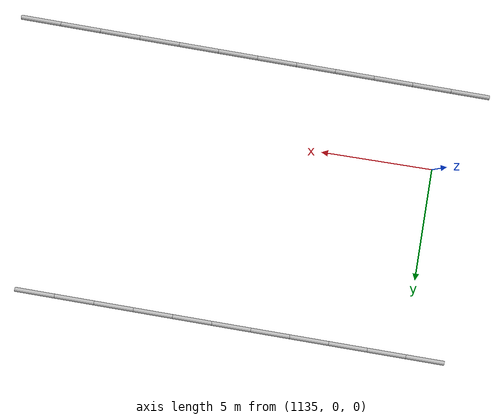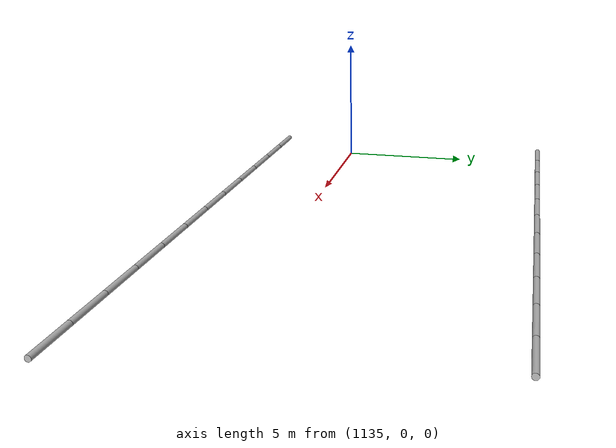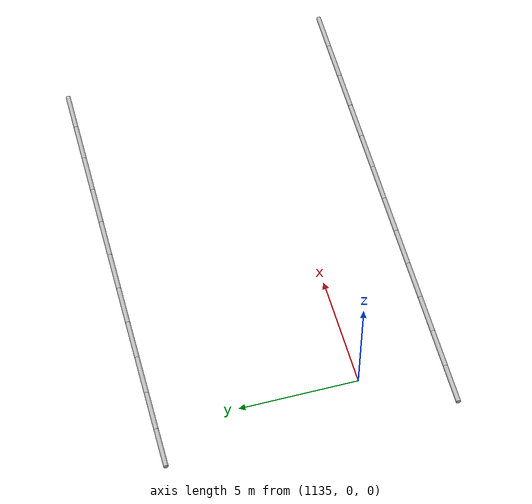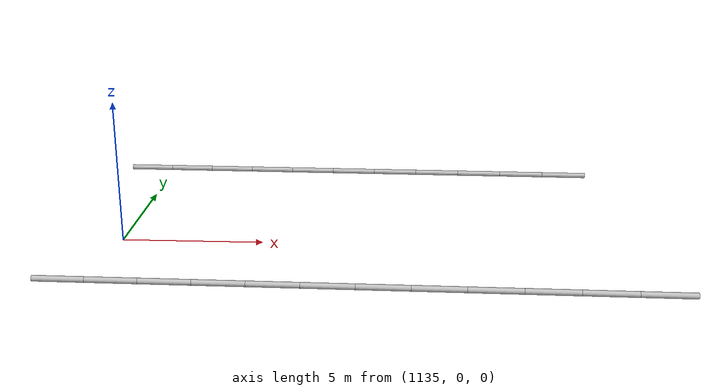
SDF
<sdf version="1.6">
 <model name="line_model">
  <static>true</static>
  <link name="cylinder_(1132.9788715383347, -3.5594063935230933)_(1134.712463155906, -3.585804243012104)">
   <pose>1133.8456673471205 -3.5726053182675988 0.05 0 1.5707963267948966 -0.01522608278701329</pose>
   <visual name="visual">
    <geometry><cylinder><radius>0.1</radius><length>1.7337925893749342</length></cylinder></geometry>
   </visual>
   <collision name="collision">
    <geometry><cylinder><radius>0.1</radius><length>1.7337925893749342</length></cylinder></geometry>
   </collision>
  </link>
  <link name="cylinder_(1134.712463155906, -3.585804243012104)_(1136.4513856061283, -3.612685945407317)">
   <pose>1135.5819243810172 -3.5992450942097105 0.05 0 1.5707963267948966 -0.015457596366075608</pose>
   <visual name="visual">
    <geometry><cylinder><radius>0.1</radius><length>1.7391302176117558</length></cylinder></geometry>
   </visual>
   <collision name="collision">
    <geometry><cylinder><radius>0.1</radius><length>1.7391302176117558</length></cylinder></geometry>
   </collision>
  </link>
  <link name="cylinder_(1136.4513856061283, -3.612685945407317)_(1138.1956888257266, -3.640050216245465)">
   <pose>1137.3235372159274 -3.626368080826391 0.05 0 1.5707963267948966 -0.015686507951613964</pose>
   <visual name="visual">
    <geometry><cylinder><radius>0.1</radius><length>1.744517848925506</length></cylinder></geometry>
   </visual>
   <collision name="collision">
    <geometry><cylinder><radius>0.1</radius><length>1.744517848925506</length></cylinder></geometry>
   </collision>
  </link>
  <link name="cylinder_(1138.1956888257266, -3.640050216245465)_(1139.9454227490576, -3.6678957708808766)">
   <pose>1139.070555787392 -3.653972993563171 0.05 0 1.5707963267948966 -0.01591282188309542</pose>
   <visual name="visual">
    <geometry><cylinder><radius>0.1</radius><length>1.749955478681693</length></cylinder></geometry>
   </visual>
   <collision name="collision">
    <geometry><cylinder><radius>0.1</radius><length>1.749955478681693</length></cylinder></geometry>
   </collision>
  </link>
  <link name="cylinder_(1139.9454227490576, -3.6678957708808766)_(1141.7006373081497, -3.696221324484191)">
   <pose>1140.8230300286036 -3.6820585476825336 0.05 0 1.5707963267948966 -0.016136542891017912</pose>
   <visual name="visual">
    <geometry><cylinder><radius>0.1</radius><length>1.7554431023066068</length></cylinder></geometry>
   </visual>
   <collision name="collision">
    <geometry><cylinder><radius>0.1</radius><length>1.7554431023066068</length></cylinder></geometry>
   </collision>
  </link>
  <link name="cylinder_(1141.7006373081497, -3.696221324484191)_(1143.4613824327512, -3.7250255920412627)">
   <pose>1142.5810098704505 -3.710623458262727 0.05 0 1.5707963267948966 -0.016357676089484505</pose>
   <visual name="visual">
    <geometry><cylinder><radius>0.1</radius><length>1.7609807152940224</length></cylinder></geometry>
   </visual>
   <collision name="collision">
    <geometry><cylinder><radius>0.1</radius><length>1.7609807152940224</length></cylinder></geometry>
   </collision>
  </link>
  <link name="cylinder_(1143.4613824327512, -3.7250255920412627)_(1145.2277080503727, -3.754307288352173)">
   <pose>1144.344545241562 -3.739666440196718 0.05 0 1.5707963267948966 -0.0165762269688125</pose>
   <visual name="visual">
    <geometry><cylinder><radius>0.1</radius><length>1.7665683132007473</length></cylinder></geometry>
   </visual>
   <collision name="collision">
    <geometry><cylinder><radius>0.1</radius><length>1.7665683132007473</length></cylinder></geometry>
   </collision>
  </link>
  <link name="cylinder_(1145.2277080503727, -3.754307288352173)_(1146.999664086334, -3.7840651280304245)">
   <pose>1146.1136860683532 -3.769186208191299 0.05 0 1.5707963267948966 -0.016792201388084023</pose>
   <visual name="visual">
    <geometry><cylinder><radius>0.1</radius><length>1.7722058916507932</length></cylinder></geometry>
   </visual>
   <collision name="collision">
    <geometry><cylinder><radius>0.1</radius><length>1.7722058916507932</length></cylinder></geometry>
   </collision>
  </link>
  <link name="cylinder_(1146.999664086334, -3.7840651280304245)_(1148.7773004638068, -3.814297825502252)">
   <pose>1147.8884822750704 -3.7991814767663383 0.05 0 1.5707963267948966 -0.017005605567714185</pose>
   <visual name="visual">
    <geometry><cylinder><radius>0.1</radius><length>1.7778934463322607</length></cylinder></geometry>
   </visual>
   <collision name="collision">
    <geometry><cylinder><radius>0.1</radius><length>1.7778934463322607</length></cylinder></geometry>
   </collision>
  </link>
  <link name="cylinder_(1148.7773004638068, -3.814297825502252)_(1150.560667103861, -3.845004095006084)">
   <pose>1149.668983783834 -3.829650960254168 0.05 0 1.5707963267948966 -0.01721644608197097</pose>
   <visual name="visual">
    <geometry><cylinder><radius>0.1</radius><length>1.7836309730001165</length></cylinder></geometry>
   </visual>
   <collision name="collision">
    <geometry><cylinder><radius>0.1</radius><length>1.7836309730001165</length></cylinder></geometry>
   </collision>
  </link>
  <link name="cylinder_(1150.560667103861, -3.845004095006084)_(1152.3498139255098, -3.8761826505921473)">
   <pose>1151.4552405146856 -3.8605933727991157 0.05 0 1.5707963267948966 -0.01742472985151614</pose>
   <visual name="visual">
    <geometry><cylinder><radius>0.1</radius><length>1.7894184674760065</length></cylinder></geometry>
   </visual>
   <collision name="collision">
    <geometry><cylinder><radius>0.1</radius><length>1.7894184674760065</length></cylinder></geometry>
   </collision>
  </link>
  <link name="cylinder_(1152.3498139255098, -3.8761826505921473)_(1154.1447908457533, -3.9078322061221833)">
   <pose>1153.2473023856314 -3.8920074283571653 0.05 0 1.5707963267948966 -0.01763046413593312</pose>
   <visual name="visual">
    <geometry><cylinder><radius>0.1</radius><length>1.795255925647367</length></cylinder></geometry>
   </visual>
   <collision name="collision">
    <geometry><cylinder><radius>0.1</radius><length>1.795255925647367</length></cylinder></geometry>
   </collision>
  </link>
  <link name="cylinder_(1133.1601774164747, 8.439223869075711)_(1134.8965625047433, 8.41278348345628)">
   <pose>1134.0283699606089 8.426003676265996 0.05 0 1.5707963267948966 -0.015226082342000971</pose>
   <visual name="visual">
    <geometry><cylinder><radius>0.1</radius><length>1.736586383901899</length></cylinder></geometry>
   </visual>
   <collision name="collision">
    <geometry><cylinder><radius>0.1</radius><length>1.736586383901899</length></cylinder></geometry>
   </collision>
  </link>
  <link name="cylinder_(1134.8965625047433, 8.41278348345628)_(1136.638247171237, 8.385859081198412)">
   <pose>1135.7674048379902 8.399321282327346 0.05 0 1.5707963267948966 -0.015457595928372463</pose>
   <visual name="visual">
    <geometry><cylinder><radius>0.1</radius><length>1.7418927639026043</length></cylinder></geometry>
   </visual>
   <collision name="collision">
    <geometry><cylinder><radius>0.1</radius><length>1.7418927639026043</length></cylinder></geometry>
   </collision>
  </link>
  <link name="cylinder_(1136.638247171237, 8.385859081198412)_(1138.3852814025583, 8.358451967561077)">
   <pose>1137.5117642868977 8.372155524379744 0.05 0 1.5707963267948966 -0.015686507521218154</pose>
   <visual name="visual">
    <geometry><cylinder><radius>0.1</radius><length>1.7472491966764252</length></cylinder></geometry>
   </visual>
   <collision name="collision">
    <geometry><cylinder><radius>0.1</radius><length>1.7472491966764252</length></cylinder></geometry>
   </collision>
  </link>
  <link name="cylinder_(1138.3852814025583, 8.358451967561077)_(1140.1377151876798, 8.330563447620838)">
   <pose>1139.261498295119 8.344507707590957 0.05 0 1.5707963267948966 -0.015912821460016956</pose>
   <visual name="visual">
    <geometry><cylinder><radius>0.1</radius><length>1.7526556823230894</length></cylinder></geometry>
   </visual>
   <collision name="collision">
    <geometry><cylinder><radius>0.1</radius><length>1.7526556823230894</length></cylinder></geometry>
   </collision>
  </link>
  <link name="cylinder_(1140.1377151876798, 8.330563447620838)_(1141.8955985178993, 8.30219482627058)">
   <pose>1141.0166568527895 8.31637913694571 0.05 0 1.5707963267948966 -0.016136542475252858</pose>
   <visual name="visual">
    <geometry><cylinder><radius>0.1</radius><length>1.7581122209179685</length></cylinder></geometry>
   </visual>
   <collision name="collision">
    <geometry><cylinder><radius>0.1</radius><length>1.7581122209179685</length></cylinder></geometry>
   </collision>
  </link>
  <link name="cylinder_(1141.8955985178993, 8.30219482627058)_(1143.6589813867977, 8.273347408218388)">
   <pose>1142.7772899523484 8.287771117244484 0.05 0 1.5707963267948966 -0.01635767568101972</pose>
   <visual name="visual">
    <geometry><cylinder><radius>0.1</radius><length>1.7636188125137737</length></cylinder></geometry>
   </visual>
   <collision name="collision">
    <geometry><cylinder><radius>0.1</radius><length>1.7636188125137737</length></cylinder></geometry>
   </collision>
  </link>
  <link name="cylinder_(1143.6589813867977, 8.273347408218388)_(1145.4279137901908, 8.244022497986583)">
   <pose>1144.5434475884942 8.258684953102485 0.05 0 1.5707963267948966 -0.01657622656764487</pose>
   <visual name="visual">
    <geometry><cylinder><radius>0.1</radius><length>1.7691754571365508</length></cylinder></geometry>
   </visual>
   <collision name="collision">
    <geometry><cylinder><radius>0.1</radius><length>1.7691754571365508</length></cylinder></geometry>
   </collision>
  </link>
  <link name="cylinder_(1145.4279137901908, 8.244022497986583)_(1147.2024457260889, 8.214221399910908)">
   <pose>1146.31517975814 8.229121948948745 0.05 0 1.5707963267948966 -0.016792200994183753</pose>
   <visual name="visual">
    <geometry><cylinder><radius>0.1</radius><length>1.7747821547921199</length></cylinder></geometry>
   </visual>
   <collision name="collision">
    <geometry><cylinder><radius>0.1</radius><length>1.7747821547921199</length></cylinder></geometry>
   </collision>
  </link>
  <link name="cylinder_(1147.2024457260889, 8.214221399910908)_(1148.9826271946465, 8.183945418139825)">
   <pose>1148.0925364603677 8.199083409025366 0.05 0 1.5707963267948966 -0.017005605181076557</pose>
   <visual name="visual">
    <geometry><cylinder><radius>0.1</radius><length>1.7804389054579493</length></cylinder></geometry>
   </visual>
   <collision name="collision">
    <geometry><cylinder><radius>0.1</radius><length>1.7804389054579493</length></cylinder></geometry>
   </collision>
  </link>
  <link name="cylinder_(1148.9826271946465, 8.183945418139825)_(1150.768508198122, 8.153195856634015)">
   <pose>1149.8755676963842 8.168570637386921 0.05 0 1.5707963267948966 -0.017216445702561187</pose>
   <visual name="visual">
    <geometry><cylinder><radius>0.1</radius><length>1.786145709091839</length></cylinder></geometry>
   </visual>
   <collision name="collision">
    <geometry><cylinder><radius>0.1</radius><length>1.786145709091839</length></cylinder></geometry>
   </collision>
  </link>
  <link name="cylinder_(1150.768508198122, 8.153195856634015)_(1152.5601387408306, 8.12197401916593)">
   <pose>1151.6643234694761 8.137584937899973 0.05 0 1.5707963267948966 -0.017424729479307868</pose>
   <visual name="visual">
    <geometry><cylinder><radius>0.1</radius><length>1.7919025656271765</length></cylinder></geometry>
   </visual>
   <collision name="collision">
    <geometry><cylinder><radius>0.1</radius><length>1.7919025656271765</length></cylinder></geometry>
   </collision>
  </link>
 </model>
</sdf>
